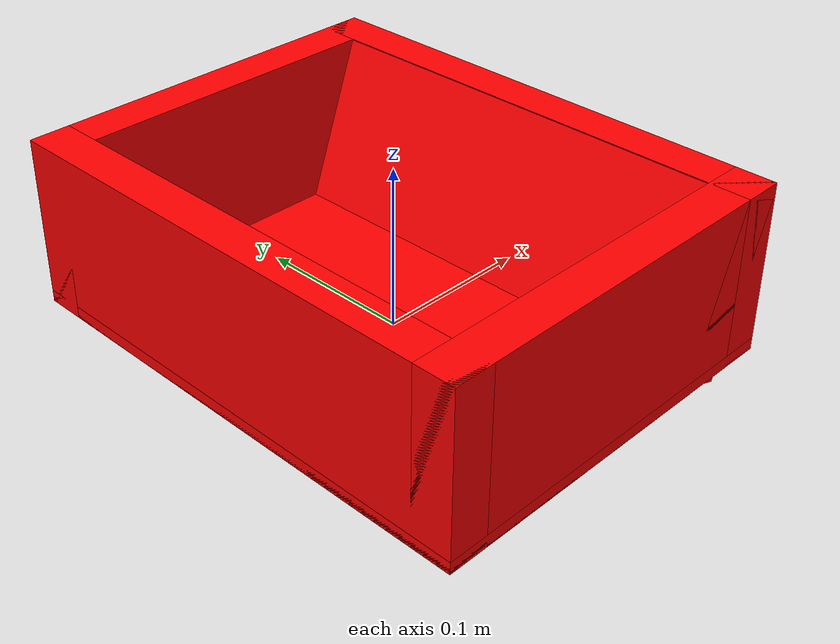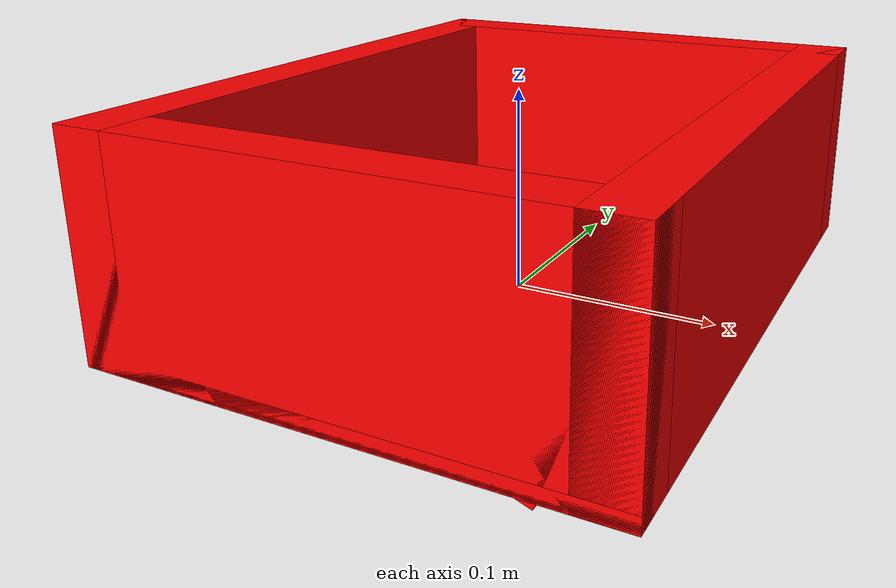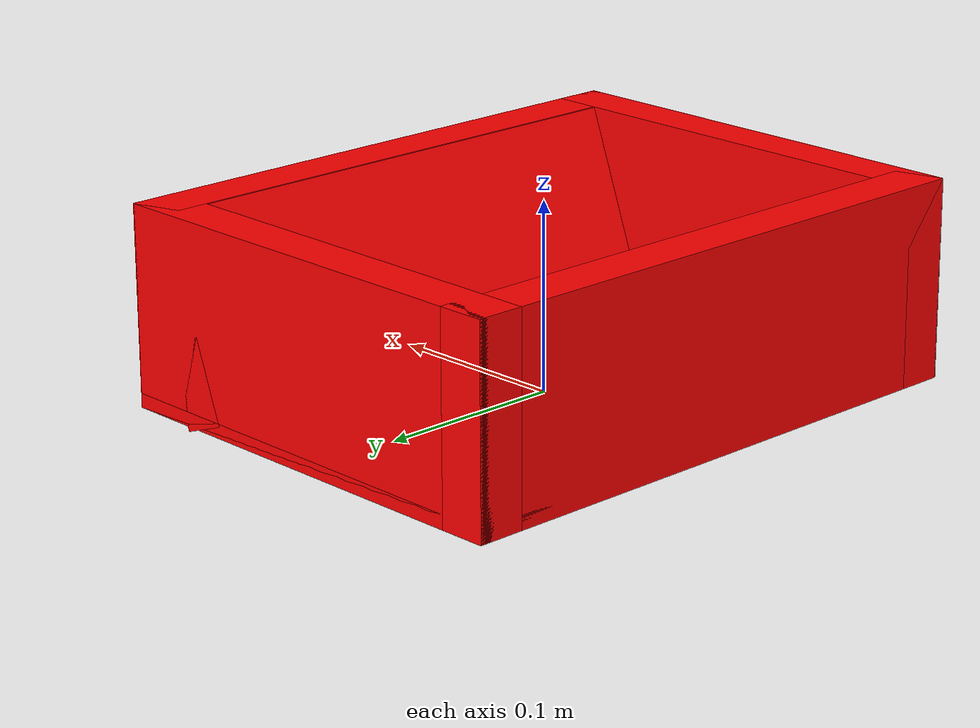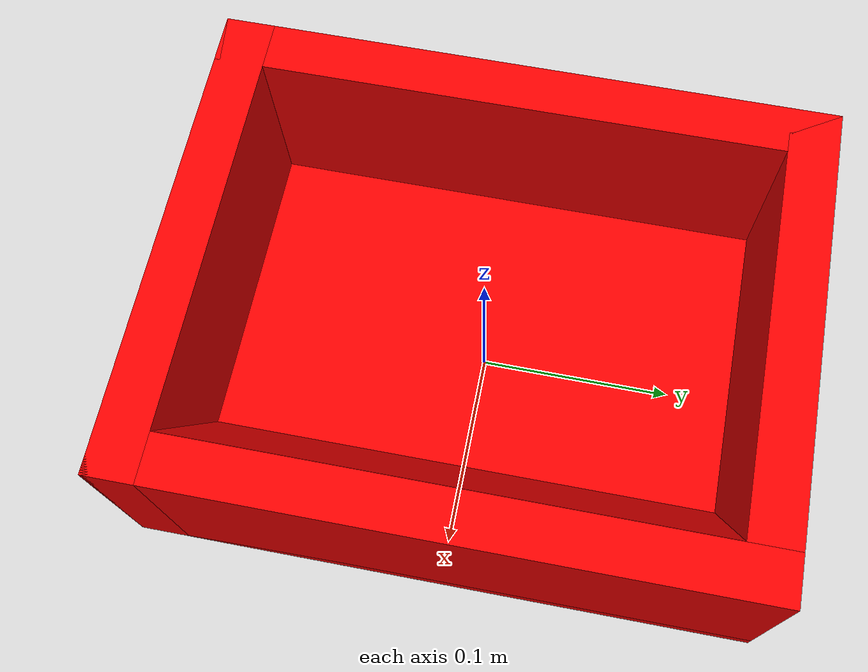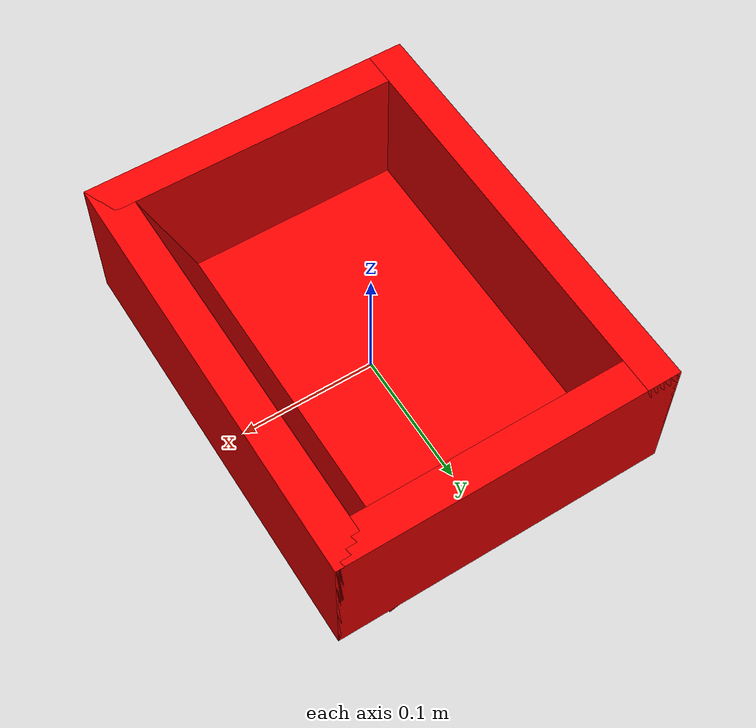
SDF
<?xml version="1.0"?>
<sdf version="1.7">
  <model name="bin_model">
    <!--
    Axes:
      +X - Pointing towards front (slope)
      +Y - Pointing to left side
      +Z - Up
    Origin:
      (0, 0, 0) at the center bottom of the bin
    -->
    <link name="bin_base">
      <inertial>
        <!-- mass and inertia roughly scaled by 0.5^3 and 0.5^5 -->
        <mass>2.34</mass>
        <inertia>
          <ixx>0.025</ixx>
          <ixy>0</ixy>
          <ixz>0</ixz>
          <iyy>0.017</iyy>
          <iyz>0</iyz>
          <izz>0.038</izz>
        </inertia>
      </inertial>

      <!-- front wall -->
      <visual name="front">
        <pose>0.11 0 0.0525 0 0 0</pose>
        <geometry>
          <box>
            <size>0.025 0.315 0.105</size>
          </box>
        </geometry>
        <material>
          <ambient>1.0 0.0 0.0 1.0</ambient>
          <diffuse>1.0 0.0 0.0 1.0</diffuse>
          <specular>0.1 0.1 0.1 1.0</specular>
        </material>
      </visual>
      <collision name="front">
        <pose>0.11 0 0.0525 0 0 0</pose>
        <geometry>
          <box>
            <size>0.025 0.315 0.105</size>
          </box>
        </geometry>
      </collision>

      <!-- slope wall -->
      <visual name="slope">
        <pose>0.091 0 0.051 0 0.35 0</pose>
        <geometry>
          <box>
            <size>0.025 0.315 0.105</size>
          </box>
        </geometry>
        <material>
          <ambient>1.0 0.0 0.0 1.0</ambient>
          <diffuse>1.0 0.0 0.0 1.0</diffuse>
          <specular>0.1 0.1 0.1 1.0</specular>
        </material>
      </visual>
      <collision name="slope">
        <pose>0.091 0 0.051 0 0.35 0</pose>
        <geometry>
          <box>
            <size>0.025 0.315 0.105</size>
          </box>
        </geometry>
      </collision>

      <!-- back wall -->
      <visual name="back">
        <pose>-0.11 0 0.0525 0 0 0</pose>
        <geometry>
          <box>
            <size>0.025 0.315 0.105</size>
          </box>
        </geometry>
        <material>
          <ambient>1.0 0.0 0.0 1.0</ambient>
          <diffuse>1.0 0.0 0.0 1.0</diffuse>
          <specular>0.1 0.1 0.1 1.0</specular>
        </material>
      </visual>
      <collision name="back">
        <pose>-0.11 0 0.0525 0 0 0</pose>
        <geometry>
          <box>
            <size>0.025 0.315 0.105</size>
          </box>
        </geometry>
      </collision>

      <!-- left wall -->
      <visual name="left">
        <pose>0 0.145 0.0525 0 0 0</pose>
        <geometry>
          <box>
            <size>0.245 0.025 0.105</size>
          </box>
        </geometry>
        <material>
          <ambient>1.0 0.0 0.0 1.0</ambient>
          <diffuse>1.0 0.0 0.0 1.0</diffuse>
          <specular>0.1 0.1 0.1 1.0</specular>
        </material>
      </visual>
      <collision name="left">
        <pose>0 0.145 0.0525 0 0 0</pose>
        <geometry>
          <box>
            <size>0.245 0.025 0.105</size>
          </box>
        </geometry>
      </collision>

      <!-- right wall -->
      <visual name="right">
        <pose>0 -0.145 0.0525 0 0 0</pose>
        <geometry>
          <box>
            <size>0.245 0.025 0.105</size>
          </box>
        </geometry>
        <material>
          <ambient>1.0 0.0 0.0 1.0</ambient>
          <diffuse>1.0 0.0 0.0 1.0</diffuse>
          <specular>0.1 0.1 0.1 1.0</specular>
        </material>
      </visual>
      <collision name="right">
        <pose>0 -0.145 0.0525 0 0 0</pose>
        <geometry>
          <box>
            <size>0.245 0.025 0.105</size>
          </box>
        </geometry>
      </collision>

      <!-- bottom -->
      <visual name="bottom">
        <pose>0.0 0.0 0.00375 0 0 0</pose>
        <geometry>
          <box>
            <size>0.245 0.315 0.0075</size>
          </box>
        </geometry>
        <material>
          <ambient>1.0 0.0 0.0 1.0</ambient>
          <diffuse>1.0 0.0 0.0 1.0</diffuse>
          <specular>0.1 0.1 0.1 1.0</specular>
        </material>
      </visual>
      <collision name="bottom">
        <pose>0.0 0.0 0.00375 0 0 0</pose>
        <geometry>
          <box>
            <size>0.245 0.315 0.0075</size>
          </box>
        </geometry>
      </collision>
    </link>

    <!-- front top center frame (scaled) -->
    <frame name="bin_front_top_center">
      <pose relative_to="bin_base">0.11 0 0.105 0 0 0</pose>
    </frame>
  </model>
</sdf>
